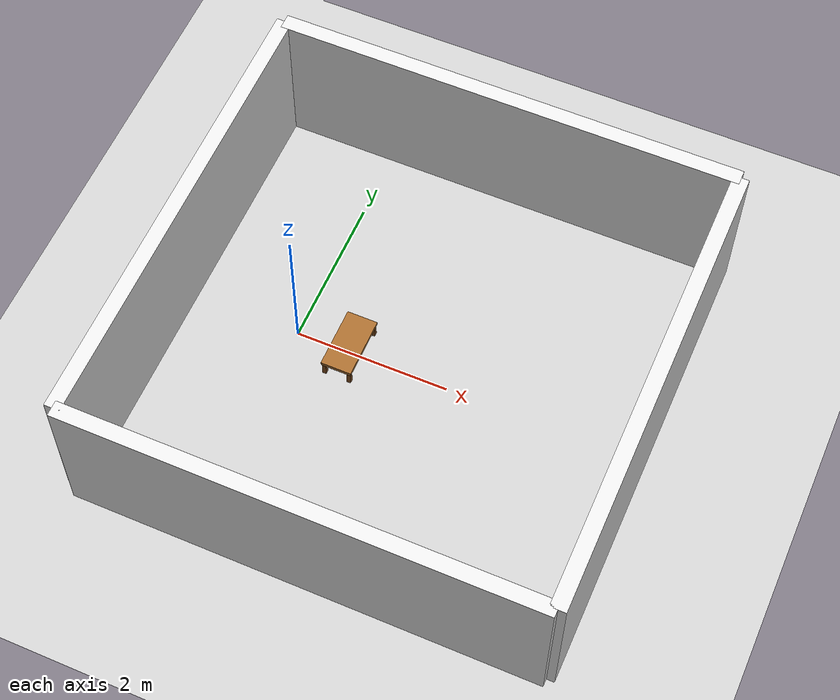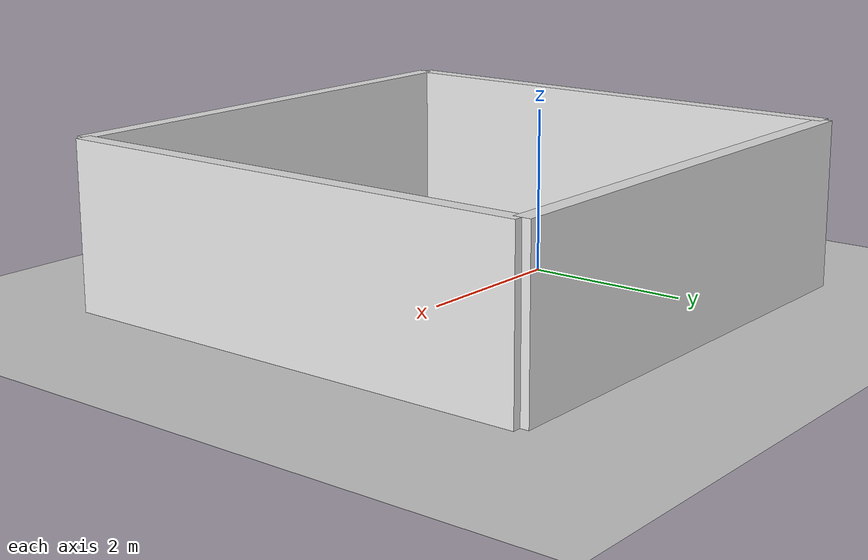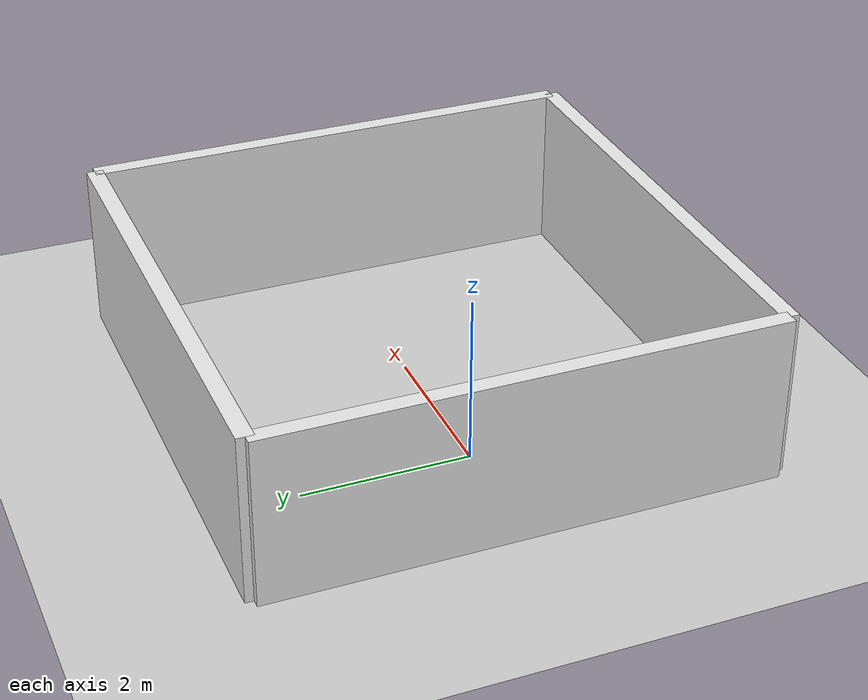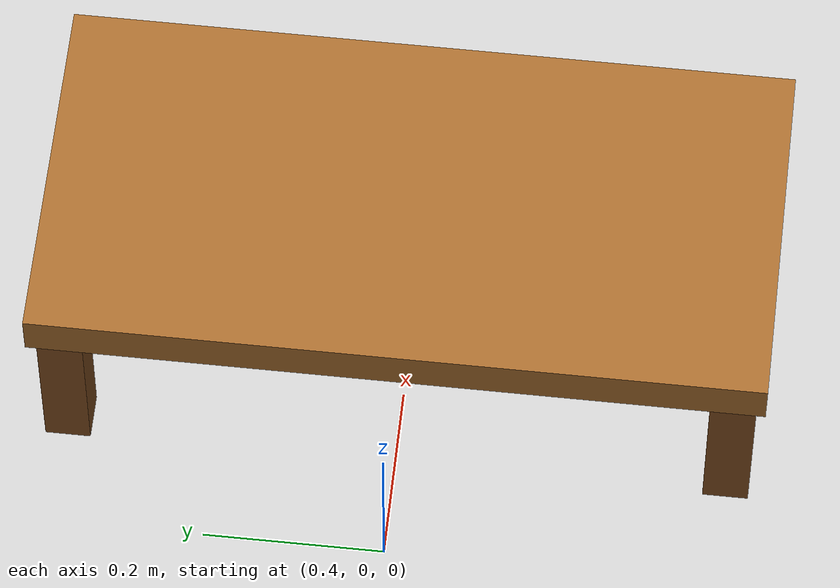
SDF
<sdf version="1.6">
 <world name="locobot_table_arm">
  <gravity>0 0 -9.81</gravity>
  <physics type="ode">
   <real_time_update_rate>500.0</real_time_update_rate>
   <max_step_size>0.002</max_step_size>
   <real_time_factor>1</real_time_factor>
  </physics>
  <scene>
   <ambient>0.6 0.6 0.6 1</ambient>
   <background>0.87 0.92 0.98 1</background>
   <shadows>false</shadows>
  </scene>
  <include><uri>model://sun</uri></include>
  <include><uri>model://ground_plane</uri></include>
  <model name="wall_north">
   <static>true</static>
   <pose>1.5 3.0 1.0 0 0 0</pose>
   <link name="link">
    <collision name="c"><geometry><box><size>6.0 0.2 2.0</size></box></geometry></collision>
    <visual name="v">
     <geometry><box><size>6.0 0.2 2.0</size></box></geometry>
     <material><ambient>0.8 0.8 0.8 1</ambient><diffuse>0.9 0.9 0.9 1</diffuse></material>
    </visual>
   </link>
  </model>
  <model name="wall_south">
   <static>true</static>
   <pose>1.5 -3.0 1.0 0 0 0</pose>
   <link name="link">
    <collision name="c"><geometry><box><size>6.0 0.2 2.0</size></box></geometry></collision>
    <visual name="v">
     <geometry><box><size>6.0 0.2 2.0</size></box></geometry>
     <material><ambient>0.8 0.8 0.8 1</ambient><diffuse>0.9 0.9 0.9 1</diffuse></material>
    </visual>
   </link>
  </model>
  <model name="wall_east">
   <static>true</static>
   <pose>4.5 0.0 1.0 0 0 0</pose>
   <link name="link">
    <collision name="c"><geometry><box><size>0.2 6.0 2.0</size></box></geometry></collision>
    <visual name="v">
     <geometry><box><size>0.2 6.0 2.0</size></box></geometry>
     <material><ambient>0.8 0.8 0.8 1</ambient><diffuse>0.9 0.9 0.9 1</diffuse></material>
    </visual>
   </link>
  </model>
  <model name="wall_west">
   <static>true</static>
   <pose>-1.5 0.0 1.0 0 0 0</pose>
   <link name="link">
    <collision name="c"><geometry><box><size>0.2 6.0 2.0</size></box></geometry></collision>
    <visual name="v">
     <geometry><box><size>0.2 6.0 2.0</size></box></geometry>
     <material><ambient>0.8 0.8 0.8 1</ambient><diffuse>0.9 0.9 0.9 1</diffuse></material>
    </visual>
   </link>
  </model>
  <model name="table">
   <static>true</static>
   <pose>0.70 0.0 0 0 0 0</pose>
   <link name="top">
    <pose>0 0 0.225 0 0 0</pose>
    <collision name="top_col"><geometry><box><size>0.4 0.8 0.05</size></box></geometry></collision>
    <visual name="top_vis">
     <geometry><box><size>0.4 0.8 0.05</size></box></geometry>
     <material><ambient>0.55 0.35 0.15 1</ambient><diffuse>0.65 0.42 0.18 1</diffuse></material>
    </visual>
   </link>
   <link name="leg_fl">
    <pose>-0.165 -0.365 0.10 0 0 0</pose>
    <collision name="c"><geometry><box><size>0.05 0.05 0.20</size></box></geometry></collision>
    <visual name="v">
     <geometry><box><size>0.05 0.05 0.20</size></box></geometry>
     <material><ambient>0.4 0.25 0.1 1</ambient><diffuse>0.5 0.3 0.12 1</diffuse></material>
    </visual>
   </link>
   <link name="leg_fr">
    <pose>-0.165  0.365 0.10 0 0 0</pose>
    <collision name="c"><geometry><box><size>0.05 0.05 0.20</size></box></geometry></collision>
    <visual name="v">
     <geometry><box><size>0.05 0.05 0.20</size></box></geometry>
     <material><ambient>0.4 0.25 0.1 1</ambient><diffuse>0.5 0.3 0.12 1</diffuse></material>
    </visual>
   </link>
   <link name="leg_bl">
    <pose>0.165 -0.365 0.10 0 0 0</pose>
    <collision name="c"><geometry><box><size>0.05 0.05 0.20</size></box></geometry></collision>
    <visual name="v">
     <geometry><box><size>0.05 0.05 0.20</size></box></geometry>
     <material><ambient>0.4 0.25 0.1 1</ambient><diffuse>0.5 0.3 0.12 1</diffuse></material>
    </visual>
   </link>
   <link name="leg_br">
    <pose>0.165  0.365 0.10 0 0 0</pose>
    <collision name="c"><geometry><box><size>0.05 0.05 0.20</size></box></geometry></collision>
    <visual name="v">
     <geometry><box><size>0.05 0.05 0.20</size></box></geometry>
     <material><ambient>0.4 0.25 0.1 1</ambient><diffuse>0.5 0.3 0.12 1</diffuse></material>
    </visual>
   </link>
  </model>
 </world>
</sdf>
